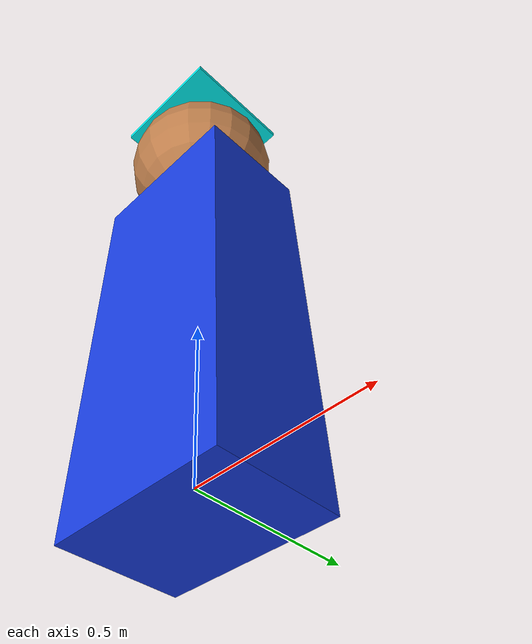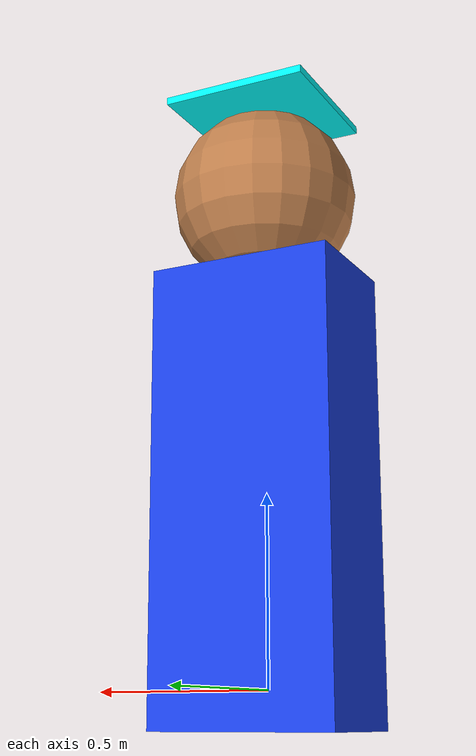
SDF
<?xml version="1.0" ?>
<sdf version="1.9">
  <model name="target_person">
    <static>false</static>

    <link name="person">
      <gravity>false</gravity>
      <visual name="body">
        <pose>0 0 0.5 0 0 0</pose>
        <geometry>
          <box>
            <size>0.5 0.35 1.2</size>
          </box>
        </geometry>
        <material>
          <ambient>0.1 0.25 0.9 1</ambient>
          <diffuse>0.1 0.25 0.9 1</diffuse>
        </material>
      </visual>

      <visual name="head">
        <pose>0 0 1.32 0 0 0</pose>
        <geometry>
          <sphere>
            <radius>0.25</radius>
          </sphere>
        </geometry>
        <material>
          <ambient>0.75 0.5 0.3 1</ambient>
          <diffuse>0.75 0.5 0.3 1</diffuse>
        </material>
      </visual>

      <visual name="tracking_marker">
        <pose>0 0 1.58 0 0 0</pose>
        <geometry>
          <box>
            <size>0.4 0.4 0.02</size>
          </box>
        </geometry>
        <material>
          <ambient>0 1 1 1</ambient>
          <diffuse>0 1 1 1</diffuse>
          <emissive>0 0.2 0.2 1</emissive>
        </material>
      </visual>
    </link>

    <plugin
      filename="DeterministicPathPlugin"
      name="DeterministicPathPlugin">
      <speed>0.75</speed>
      <waypoints>
        <waypoint>-4 -3</waypoint>
        <waypoint>-4 -8</waypoint>
        <waypoint>2 -8</waypoint>
        <waypoint>2 -3</waypoint>
      </waypoints>
    </plugin>

    <plugin
      filename="gz-sim-pose-publisher-system"
      name="gz::sim::systems::PosePublisher">
      <topic>/world/iris_runway/model/target_person/pose</topic>
      <publish_model_pose>true</publish_model_pose>
      <publish_link_pose>false</publish_link_pose>
      <use_pose_vector_msg>true</use_pose_vector_msg>
      <update_frequency>10</update_frequency>
    </plugin>
  </model>
</sdf>
